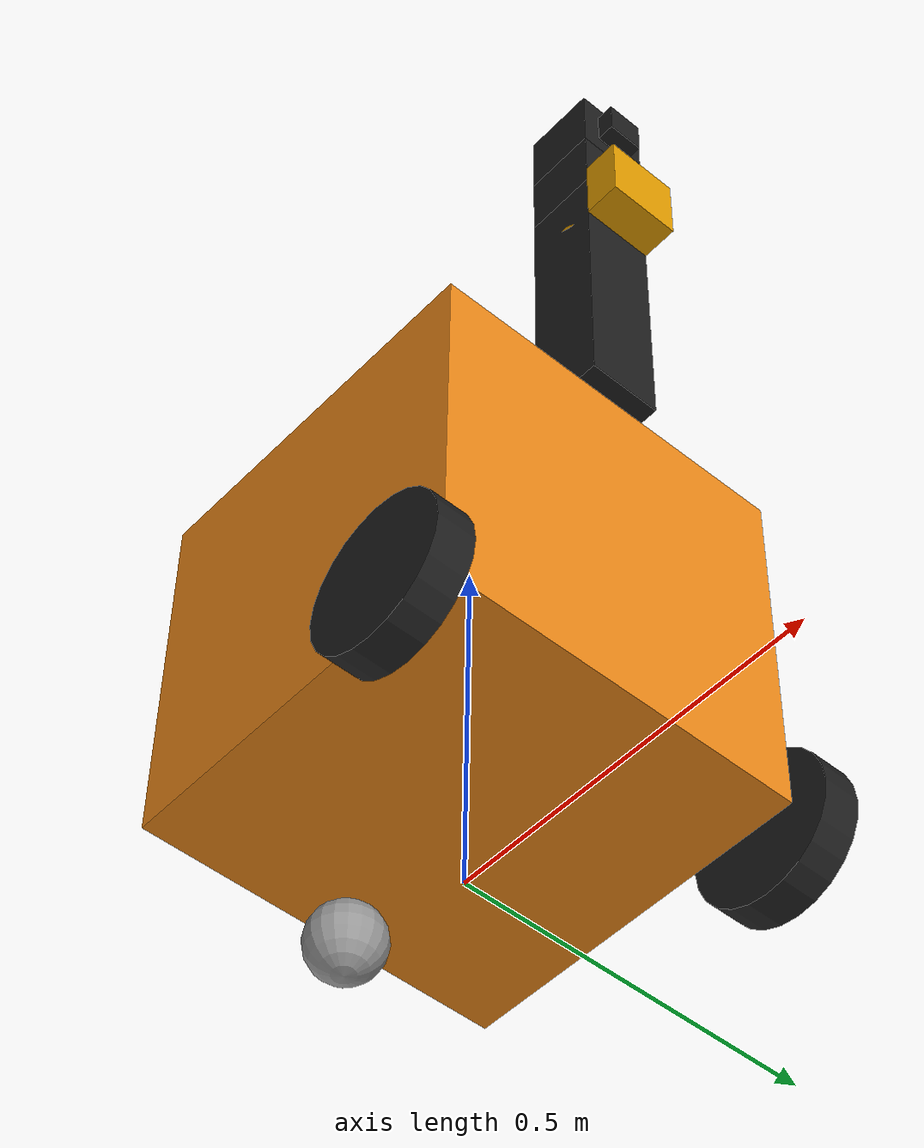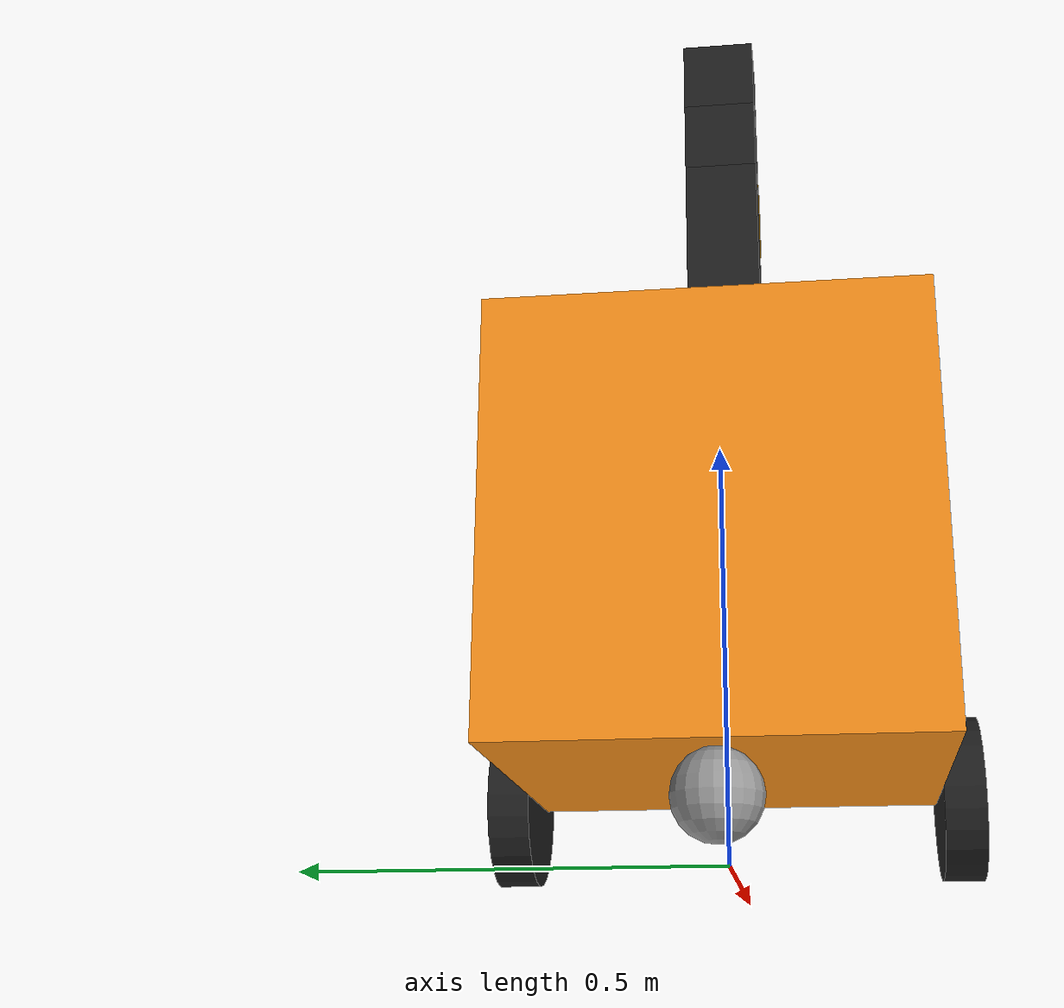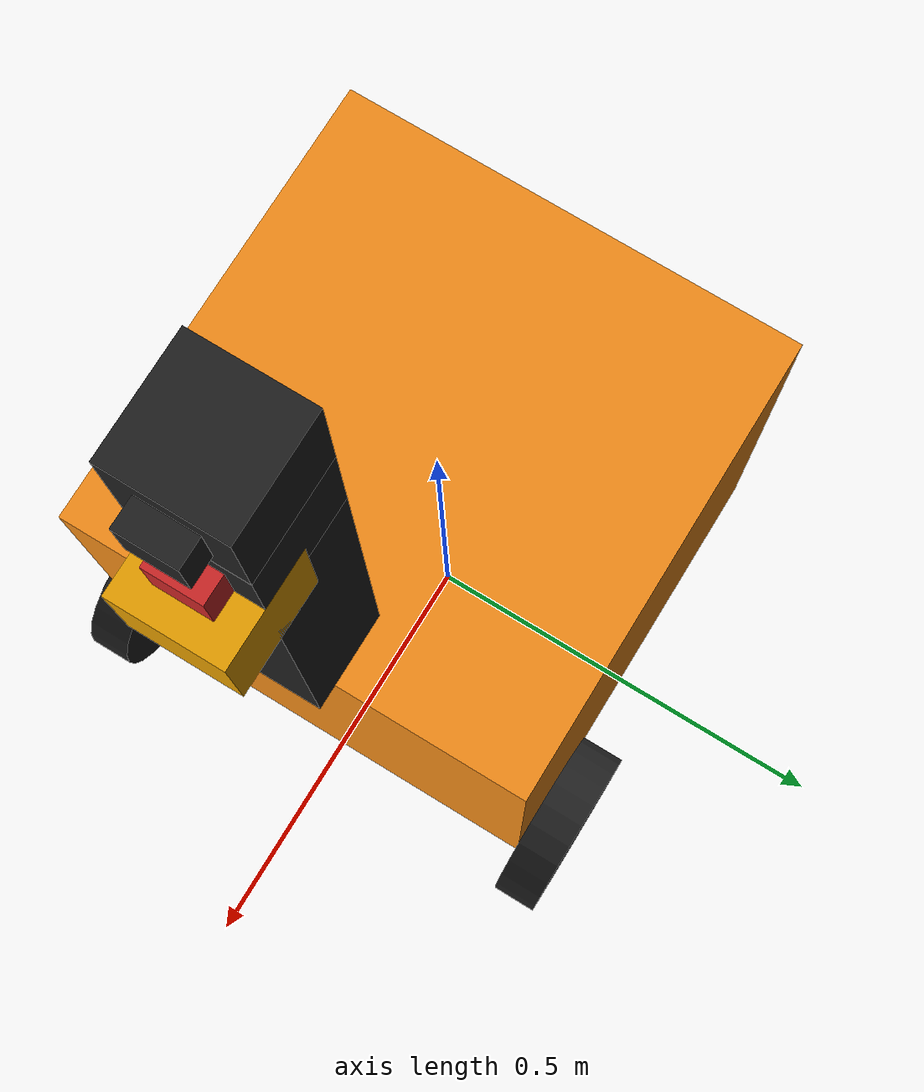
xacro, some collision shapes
<?xml version="1.0"?>
<!-- Revolute-Revolute Manipulator -->
<robot name="ron" xmlns:xacro="http://www.ros.org/wiki/xacro">

  <!-- Constants for robot dimensions -->
  <xacro:property name="PI" value="3.1415926535897931"/>
  <xacro:property name="M_PI" value="3.1415926535897931" />
  <xacro:property name="mass" value="1" /> <!-- arbitrary value for mass -->
  <xacro:property name="width1" value="1" /> <!-- Square dimensions (widthxwidth) of beams -->
  <xacro:property name="width2" value="0.1" /> <!-- Square dimensions (widthxwidth) of beams -->
  <xacro:property name="height1" value="0.5" /> <!-- Link 1 -->
  <xacro:property name="height2" value="0.4" /> <!-- Link 2 -->
  <xacro:property name="height3" value="0.1" /> <!-- Link 3 -->
  <xacro:property name="camera_link" value="0.05" /> <!-- Size of square 'camera' box -->
  <xacro:property name="axel_offset" value="0.05" /> <!-- Space btw top of beam and the each joint -->

  <xacro:property name="wheelWidth" value="0.05"/>
  <xacro:property name="wheelRadius" value="0.1"/>
  <xacro:property name="wheelPos" value="0.2"/>
  <xacro:property name="wheelMass" value="1"/>

  <xacro:property name="casterRadius" value="0.05"/>
  <xacro:property name="casterMass" value="1"/>

  <xacro:property name="chassisHeight" value="0.5"/>
  <xacro:property name="chassisLength" value="0.8"/>
  <xacro:property name="chassisWidth" value="0.5"/>
  <xacro:property name="chassisMass" value="0.25"/>

  <xacro:property name="kinect_cam_py" value="-0.0125"/>
  <xacro:property name="cam_px" value="-0.087" />
  <xacro:property name="cam_pz" value="0.2870" />
  <xacro:property name="cam_or" value="0" />
  <xacro:property name="cam_op" value="0" />
  <xacro:property name="cam_oy" value="0" />

  <!-- Import all Gazebo-customization elements, including Gazebo colors -->
  <xacro:include filename="$(find ron_description)/urdf/ron.gazebo" />
  <!-- Import Rviz colors -->
  <xacro:include filename="$(find ron_description)/urdf/materials.xacro" />
  <xacro:include filename="$(find ron_description)/urdf/macros.xacro" />
  <!--xacro:include filename="$(find ron_description)/urdf/sensors/kinect.urdf.xacro"/-->

 <link name="base_link"/>

  <joint name="base_joint" type="fixed">
      <parent link="base_link"/>
      <child link="link1"/>
  </joint>

  <!--****************************************************************ALL BODY PARTS************************************************-->

  <!-- Link 1 -->
  <link name="link1">
    <collision>
      <origin xyz="0 0 ${height1/2 + wheelRadius}" rpy="0 0 0"/>
      <geometry>
  <box size="${chassisWidth} ${chassisWidth} ${height1}"/>
      </geometry>
    </collision>

    <visual>
      <origin xyz="0 0 ${height1/2 + wheelRadius}" rpy="0 0 0"/>
      <geometry>
  <box size="${chassisWidth} ${chassisWidth} ${height1}"/>
      </geometry>
      <material name="orange"/>
    </visual>

    <inertial>
      <origin xyz="0 0 ${height1/2 + wheelRadius}" rpy="0 0 0"/>
      <mass value="${chassisMass}"/>
      <box_inertia m="${chassisMass}" x="${chassisLength}" y="${chassisWidth}" z="${chassisHeight}"/>
    </inertial>
   </link>

  <link name="caster_wheel">

    <collision>
      <origin xyz="${casterRadius-chassisWidth/2} 0 ${casterRadius}" rpy="0 0 0"/>
      <geometry>
  <sphere radius="${casterRadius}"/>
      </geometry>
    </collision>

    <visual>
      <origin xyz="${casterRadius-chassisWidth/2} 0 ${casterRadius}" rpy="0 0 0"/>
      <geometry>
  <sphere radius="${casterRadius}"/>
      </geometry>
    </visual>

    <inertial>
      <origin xyz="${casterRadius-chassisWidth/2} 0 ${casterRadius}" rpy="0 0 0"/>
      <mass value="${casterMass}"/>
      <sphere_inertia m="${casterMass}" r="${casterRadius}"/>
    </inertial>
  </link>

  <joint name="caster_link" type="fixed">
    <parent link="link1"/>
    <child link="caster_wheel"/>
  </joint>

  <link name="left_wheel">
    <collision>
      <origin xyz="0 0 0" rpy="0 ${PI/2} ${PI/2}" />
        <geometry>
           <cylinder length="${wheelWidth}" radius="${wheelRadius}"/>
        </geometry>
    </collision>

    <visual>
      <origin xyz="0 0 0" rpy="0 ${PI/2} ${PI/2}" />
        <geometry>
           <cylinder length="${wheelWidth}" radius="${wheelRadius}"/>
        </geometry>
            <material name="black"/>
    </visual>

    <inertial>
      <origin xyz="0 0 0" rpy="0 ${PI/2} ${PI/2}" />
      <mass value="${wheelMass}"/>
      <cylinder_inertia m="${wheelMass}" r="${wheelRadius}" h="${wheelWidth}"/>
    </inertial>
  </link>

  <joint name="left_wheel_hinge" type="continuous">
    <parent link="link1"/>
    <child link="left_wheel"/>
    <origin xyz="${-wheelPos+chassisLength/2} ${-1*wheelWidth/2+-1*chassisWidth/2} ${wheelRadius}" rpy="0 0 0" />
    <axis xyz="0 1 0" rpy="0 0 0" />
          <!--limit effort="100" velocity="100"/-->
    <joint_properties damping="0.0" friction="0.0"/>
  </joint>

  <link name="right_wheel">
    <collision>
      <origin xyz="0 0 0" rpy="0 ${PI/2} ${PI/2}" />
         <geometry>
           <cylinder length="${wheelWidth}" radius="${wheelRadius}"/>
         </geometry>
    </collision>

    <visual>
      <origin xyz="0 0 0" rpy="0 ${PI/2} ${PI/2}" />
         <geometry>
           <cylinder length="${wheelWidth}" radius="${wheelRadius}"/>
         </geometry>
      <material name="black"/>
    </visual>

    <inertial>
      <origin xyz="0 0 0" rpy="0 ${PI/2} ${PI/2}" />
      <mass value="${wheelMass}"/>
      <cylinder_inertia m="${wheelMass}" r="${wheelRadius}" h="${wheelWidth}"/>
    </inertial>
  </link>

  <joint name="right_wheel_hinge" type="continuous">
    <parent link="link1"/>
    <child link="right_wheel"/>
    <origin xyz="${-wheelPos+chassisLength/2} ${1*wheelWidth/2+1*chassisWidth/2} ${wheelRadius}" rpy="0 0 0" />
    <axis xyz="0 1 0" rpy="0 0 0" />
          <!--limit effort="100" velocity="100"/-->
    <joint_properties damping="0.0" friction="0.0"/>
  </joint>

  <!-- Link 2 (Laser) -->
  <link name="link2">
    <collision>
      <origin xyz="0 0 ${height2/2 }" rpy="0 0 0"/>
      <geometry>
       <box size="${width2} ${width2} ${height2}"/>
      </geometry>
    </collision>

    <visual>
      <origin xyz="0 0 ${height2/2 }" rpy="0 0 0"/>
      <geometry>
       <box size="${width2} ${width2} ${height2}"/>
      </geometry>
      <material name="black"/>
    </visual>

    <inertial>
      <origin xyz="0 0 ${height2/2 }" rpy="0 0 0"/>
      <mass value="${mass/100}"/>
      <inertia
    ixx="${mass / 120.0 * (width2*width2 + height2*height2)}" ixy="0.0" ixz="0.0"
    iyy="${mass / 120.0 * (height2*height2 + width2*width2)}" iyz="0.0"
    izz="${mass / 120.0 * (width2*width2 + width2*width2)}"/>
    </inertial>
  </link>

  <joint name="joint1" type="fixed">
    <parent link="link1"/>
    <child link="link2"/>
    <origin xyz="0.225 0 ${height1 + wheelRadius }" rpy="0 0 0"/>
    <axis xyz="0 0 1"/>
    <dynamics damping="0.0"/>
  </joint>

  <!--Link 3 Stationary camera-->

  <link name="link3">
    <collision>
      <origin xyz="0 0 ${height3/2 }" rpy="0 0 0"/>
      <geometry>
       <box size="${width2} ${width2} ${height3}"/>
      </geometry>
    </collision>

    <visual>
      <origin xyz="0 0 ${height3/2 }" rpy="0 0 0"/>
      <geometry>
       <box size="${width2} ${width2} ${height3}"/>
      </geometry>
      <material name="black"/>
    </visual>

    <inertial>
      <origin xyz="0 0 ${height3/2 }" rpy="0 0 0"/>
      <mass value="${mass/100}"/>
      <inertia
    ixx="${mass / 120.0 * (width2*width2 + height3*height3)}" ixy="0.0" ixz="0.0"
    iyy="${mass / 120.0 * (height2*height2 + width2*width2)}" iyz="0.0"
    izz="${mass / 120.0 * (width2*width2 + width2*width2)}"/>
    </inertial>
  </link>

  <joint name="joint2" type="fixed">
    <parent link="link2"/>
    <child link="link3"/>
    <origin xyz="0 0 ${height2 }" rpy="0 0 0"/>
    <axis xyz="0 0 1"/>
    <dynamics damping="0.0"/>
  </joint>

  <!--Link 4 Rotating camera-->

  <link name="link4">
    <collision>
      <origin xyz="0 0 ${height3/2 }" rpy="0 0 0"/>
      <geometry>
        <box size="${width2} ${width2} ${height3}"/>
      </geometry>
    </collision>

    <visual>
      <origin xyz="0 0 ${height3/2 }" rpy="0 0 0"/>
      <geometry>
        <box size="${width2} ${width2} ${height3}"/>
      </geometry>
      <material name="black"/>
    </visual>

    <inertial>
      <origin xyz="0 0 ${height3/2 }" rpy="0 0 0"/>
      <mass value="${mass/100}"/>
      <inertia
    ixx="${mass / 120.0 * (width2*width2 + height3*height3)}" ixy="0.0" ixz="0.0"
    iyy="${mass / 120.0 * (height2*height2 + width2*width2)}" iyz="0.0"
    izz="${mass / 120.0 * (width2*width2 + width2*width2)}"/>
    </inertial>
  </link>

   <joint name="camera_hinge" type="continuous">
    <parent link="link3"/>
    <child link="link4"/>
    <origin xyz="0 0 ${height3 }" rpy="0 0 0"/>
    <axis xyz="0 0 1"/>
    <dynamics damping="0.0"/>
  </joint>

<!--****************************************************************ALL SENSORS************************************************-->

  <!-- Hokuyo Laser -->
  <link name="hokuyo_link">
    <collision>
      <origin xyz="0 0 0" rpy="0 0 0"/>
      <geometry>
  <box size="0.1 0.1 0.1"/>
      </geometry>
    </collision>

    <visual>
      <origin xyz="0 0 0" rpy="0 0 0"/>
      <geometry>
        <mesh filename="package://ron_description/meshes/hokuyo.dae"/>
      </geometry>
    </visual>

    <inertial>
      <mass value="1e-5" />
      <origin xyz="0 0 0" rpy="0 0 0"/>
      <inertia ixx="1e-6" ixy="0" ixz="0" iyy="1e-6" iyz="0" izz="1e-6" />
    </inertial>
  </link>

  <joint name="hokuyo_joint" type="fixed">
    <axis xyz="0 1 0" />
    <origin xyz="${width2/2} 0 ${height2 - axel_offset/2}" rpy="0 0 0"/>
    <parent link="link2"/>
    <child link="hokuyo_link"/>
  </joint>

  <!-- Camera -->
  <link name="camera_link">
    <collision>
      <origin xyz="0 0 0" rpy="0 0 0"/>
      <geometry>
  <box size="${camera_link} ${camera_link} ${camera_link}"/>
      </geometry>
    </collision>

    <visual>
      <origin xyz="0 0 0" rpy="0 0 0"/>
      <geometry>
  <box size="${camera_link} ${camera_link} ${camera_link}"/>
      </geometry>
      <material name="red"/>
    </visual>

    <inertial>
      <mass value="1e-5" />
      <origin xyz="0 0 0" rpy="0 0 0"/>
      <inertia ixx="1e-6" ixy="0" ixz="0" iyy="1e-6" iyz="0" izz="1e-6" />
    </inertial>
  </link>

  <joint name="camera_joint" type="fixed">
    <axis xyz="0 1 0" />
    <origin xyz="${camera_link} 0 ${height3 - axel_offset }" rpy="0 0 0"/>
    <parent link="link3"/>
    <child link="camera_link"/>
  </joint>

  <!-- Kinect -->
  <link name="kinect_link">
    <collision>
      <origin xyz="0 0 0" rpy="0 0 0"/>
      <geometry>
  <box size="${camera_link} ${camera_link} ${camera_link}"/>
      </geometry>
    </collision>

    <visual>
      <origin xyz="0 0 0" rpy="0 0 0"/>
      <geometry>
  <box size="${camera_link} ${camera_link} ${camera_link}"/>
      </geometry>
      <material name="black"/>
    </visual>

    <inertial>
      <mass value="1e-5" />
      <origin xyz="0 0 0" rpy="0 0 0"/>
      <inertia ixx="1e-6" ixy="0" ixz="0" iyy="1e-6" iyz="0" izz="1e-6" />
    </inertial>
  </link>

  <joint name="kinect_joint" type="fixed">
    <axis xyz="0 1 0" />
    <origin xyz="${camera_link} 0 ${height3 - axel_offset }" rpy="0 0 0"/>
    <parent link="link4"/>
    <child link="kinect_link"/>
  </joint>

<joint name="kinect_depth_joint" type="fixed">
  <origin xyz="0 0.028 0" rpy="0 0 0" />
  <parent link="kinect_link" />
  <child link="kinect_depth_frame" />
</joint>

<link name="kinect_depth_frame">
  <inertial>
      <mass value="0.0001" />
      <origin xyz="0 0 0" />
      <inertia ixx="0.0001" ixy="0.0" ixz="0.0"
               iyy="0.0001" iyz="0.0"
               izz="0.0001" />
  </inertial>
</link>

<joint name="depth_optical_joint" type="fixed">
  <origin xyz="0 0 0" rpy="${-M_PI/2} 0 ${-M_PI/2}" />
  <parent link="kinect_depth_frame" />
  <child link="kinect_depth_optical_frame" />
</joint>

<link name="kinect_depth_optical_frame">
  <inertial>
      <mass value="0.0001" />
      <origin xyz="0 0 0" />
      <inertia ixx="0.0001" ixy="0.0" ixz="0.0"
               iyy="0.0001" iyz="0.0"
               izz="0.0001" />
  </inertial>
</link>

<!--****************************************************************CONTROL************************************************-->

  <transmission name="tran1">
    <type>transmission_interface/SimpleTransmission</type>
    <joint name="camera_hinge">
      <hardwareInterface>EffortJointInterface</hardwareInterface>
    </joint>
    <actuator name="motor1">
      <hardwareInterface>EffortJointInterface</hardwareInterface>
      <mechanicalReduction>1</mechanicalReduction>
    </actuator>
  </transmission>

  <transmission name="tran2">
    <type>transmission_interface/SimpleTransmission</type>
    <joint name="left_wheel_hinge">
      <hardwareInterface>EffortJointInterface</hardwareInterface>
    </joint>
    <actuator name="motor2">
      <hardwareInterface>EffortJointInterface</hardwareInterface>
      <mechanicalReduction>1</mechanicalReduction>
    </actuator>
  </transmission>

  <transmission name="tran3">
    <type>transmission_interface/SimpleTransmission</type>
    <joint name="right_wheel_hinge">
      <hardwareInterface>EffortJointInterface</hardwareInterface>
    </joint>
    <actuator name="motor3">
      <hardwareInterface>EffortJointInterface</hardwareInterface>
      <mechanicalReduction>1</mechanicalReduction>
    </actuator>
  </transmission>

</robot>

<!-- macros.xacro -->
<robot>
     <macro name="cylinder_inertia" params="m r h">
        <inertia  ixx="${m*(3*r*r+h*h)/12}" ixy = "0" ixz = "0"
                  iyy="${m*(3*r*r+h*h)/12}" iyz = "0"
                  izz="${m*r*r/2}" />
      </macro>

      <macro name="box_inertia" params="m x y z">
        <inertia  ixx="${m*(y*y+z*z)/12}" ixy = "0" ixz = "0"
                  iyy="${m*(x*x+z*z)/12}" iyz = "0"
                  izz="${m*(x*x+z*z)/12}" />
      </macro>

      <macro name="sphere_inertia" params="m r">
        <inertia  ixx="${2*m*r*r/5}" ixy = "0" ixz = "0"
                  iyy="${2*m*r*r/5}" iyz = "0"
                  izz="${2*m*r*r/5}" />
      </macro>

</robot>
